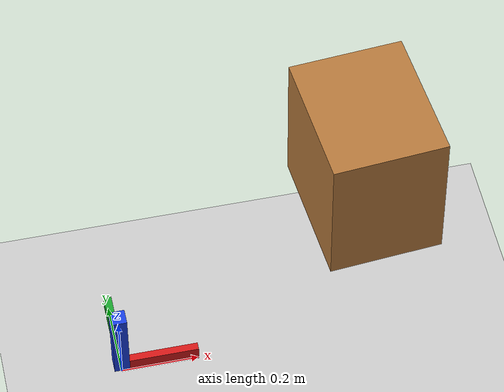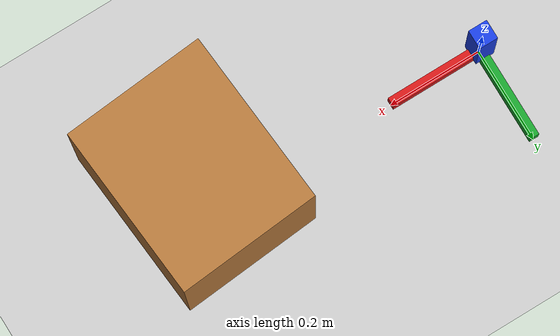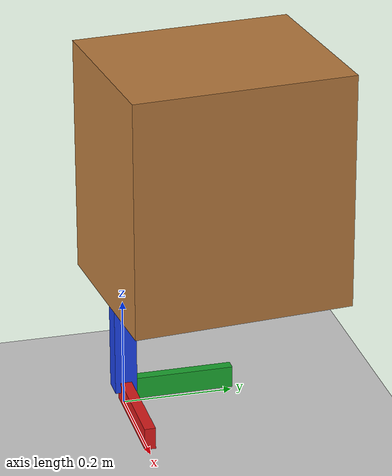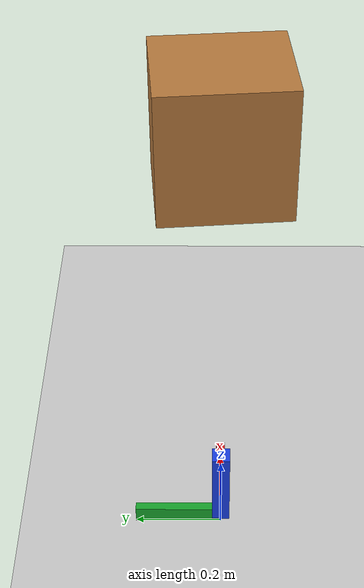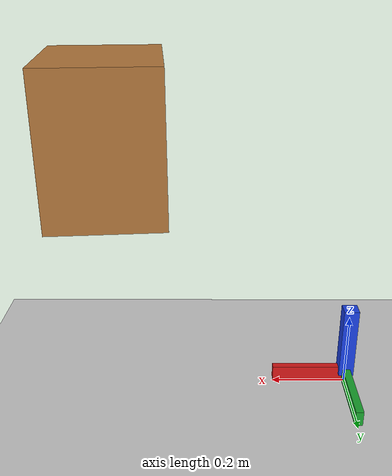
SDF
<?xml version="1.0" ?>
<sdf version="1.6">
  <world name="qpin_visual_scene">
    <plugin name="gazebo_ros_init" filename="libgazebo_ros_init.so"/>
    <plugin name="gazebo_ros_factory" filename="libgazebo_ros_factory.so"/>
    <plugin name="gazebo_ros_state" filename="libgazebo_ros_state.so">
      <update_rate>30.0</update_rate>
    </plugin>

    <scene>
      <ambient>0.65 0.65 0.65 1</ambient>
      <background>0.78 0.82 0.86 1</background>
      <shadows>false</shadows>
    </scene>

    <light name="sun" type="directional">
      <pose>0 0 5 0 0 0</pose>
      <diffuse>0.9 0.9 0.9 1</diffuse>
      <direction>-0.5 0.2 -1</direction>
    </light>

    <include>
      <uri>model://ground_plane</uri>
    </include>

    <model name="base_link_reference">
      <static>true</static>
      <pose>0 0 0 0 0 0</pose>
      <link name="base_link_axis">
        <visual name="x_axis">
          <pose>0.10 0 0.03 0 0 0</pose>
          <geometry><box><size>0.20 0.02 0.04</size></box></geometry>
          <material><ambient>0.85 0.10 0.10 1</ambient><diffuse>0.85 0.10 0.10 1</diffuse></material>
        </visual>
        <visual name="y_axis">
          <pose>0 0.10 0.03 0 0 0</pose>
          <geometry><box><size>0.02 0.20 0.04</size></box></geometry>
          <material><ambient>0.10 0.65 0.18 1</ambient><diffuse>0.10 0.65 0.18 1</diffuse></material>
        </visual>
        <visual name="z_axis">
          <pose>0 0 0.13 0 0 0</pose>
          <geometry><box><size>0.04 0.04 0.20</size></box></geometry>
          <material><ambient>0.10 0.25 0.90 1</ambient><diffuse>0.10 0.25 0.90 1</diffuse></material>
        </visual>
      </link>
    </model>

    <model name="cargo_box">
      <static>true</static>
      <pose>0.62 0.0 0.70 0 0 0.087266</pose>
      <link name="box_link">
        <visual name="box">
          <geometry><box><size>0.28 0.34 0.365</size></box></geometry>
          <material><ambient>0.72 0.48 0.24 1</ambient><diffuse>0.72 0.48 0.24 1</diffuse></material>
        </visual>
        <collision name="box_collision">
          <geometry><box><size>0.28 0.34 0.365</size></box></geometry>
        </collision>
      </link>
    </model>
  </world>
</sdf>
